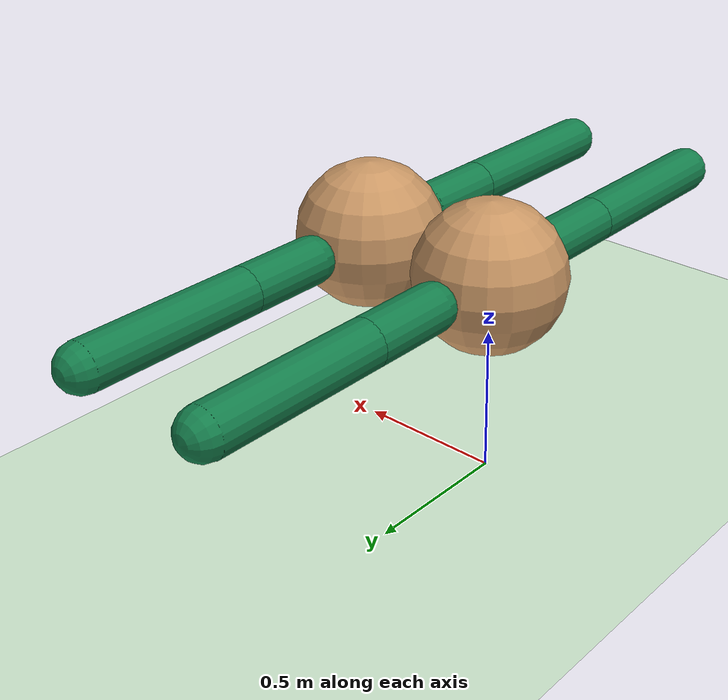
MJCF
<mujoco model="centipede-top-g">
  <compiler angle="radian" coordinate="local" inertiafromgeom="true" settotalmass="14"/>
  <default>
    <joint armature=".1" damping=".01" limited="true" solimplimit="0 .8 .03" solreflimit=".02 1" stiffness="8"/>
    <geom conaffinity="0" condim="3" contype="1" friction=".4 .1 .1" rgba="0.8 0.6 .4 1" solimp="0.0 0.8 0.01" solref="0.02 1"/>
    <motor ctrllimited="true" ctrlrange="-1 1"/>
  </default>
  <size nstack="300000" nuser_geom="1"/>
  <option gravity="0 0 -9.81" timestep="0.01"/>
  <asset>
    <texture builtin="gradient" height="100" rgb1="1 1 1" rgb2="0 0 0" type="skybox" width="100"/>
    <texture builtin="flat" height="1278" mark="cross" markrgb="1 1 1" name="texgeom" random="0.01" rgb1="0.8 0.6 0.4" rgb2="0.8 0.6 0.4" type="cube" width="127"/>
    <texture builtin="checker" height="100" name="texplane" rgb1="0 0 0" rgb2="0.8 0.8 0.8" type="2d" width="100"/>
    <material name="MatPlane" reflectance="0.5" shininess="1" specular="1" texrepeat="60 60" texture="texplane"/>
    <material name="geom" texture="texgeom" texuniform="true"/>
  </asset>
  <worldbody>
    <light cutoff="100" diffuse="1 1 1" dir="-0 0 -1.3" directional="true" exponent="1" pos="0 0 1.3" specular=".1 .1 .1"/>
    <geom conaffinity="1" condim="3" material="MatPlane" name="floor" pos="0 0 0" rgba="0.8 0.9 0.8 1" size="40 40 40" type="plane"/>
    <body name="torso_0" pos="0 0 .7">
      <camera name="track" mode="trackcom" pos="0 -3 0.3" xyaxes="1 0 0 0 0 1"/>
      <joint armature="0" axis="1 0 0" damping="0" limited="false" name="root" pos="0 0 0" stiffness="0" type="free"/>
      <geom pos="0 0 0" name="torso_0" size="0.25" type="sphere" density="100"/>

      <body name="legbody_0" pos="0.0 -0.28 0">
        <joint axis="0 0 1" damping="4.5" name="lefthip_0" pos="0.0 0.0 0.0" range="-.698 .698" stiffness="180" type="hinge"/>
        <geom fromto="0.0 0.0 0.0 0.0 -0.28 0.0" name="legGeom_0" size="0.08" type="capsule" rgba=".08 .5 .3 1"/>
        <body pos="0 -0.28 0" name="frontFoot_0">
          <joint axis="1 0 0" damping="3" name="ankle_0" pos="0.0 0.0 0.0" range="0.524 1.75" stiffness="120" type="hinge"/>
          <geom fromto="0.0 0.0 0.0 0 -0.6 0.0" name="ankleGeom_0" size="0.08" type="capsule" rgba=".08 .5 .3 1"/>
        </body>
      </body>

      <body name="legbody_1" pos="0.0 0.28 0">
        <joint axis="0 0 1" damping="4.5" name="righthip_1" pos="0.0 0.0 0.0" range="-.698 .698" stiffness="180" type="hinge"/>
        <geom fromto="0.0 0.0 0.0 0.0 0.28 0.0" name="legGeom_1" size="0.08" type="capsule" rgba=".08 .5 .3 1"/>
        <body pos="0 0.28 0" name="frontFoot_1">
          <joint axis="-1 0 0" damping="3" name="ankle_1" pos="0.0 0.0 0.0" range="0.524 1.75" stiffness="120" type="hinge"/>
          <geom fromto="0.0 0.0 0.0 0 0.6 0.0" name="ankleGeom_1" size="0.08" type="capsule" rgba=".08 .5 .3 1"/>
        </body>
      </body>

      <body name="torso_1" pos="0.5 0 0">
        <geom name="torso_1" pos="0 0 0" size="0.25" type="sphere" density="100"/>
        <joint axis="0 0 1" name="body_1" pos="-0.25 0.0 0.0" range="-0.349 0.349" type="hinge"/>
        <joint axis="0 1 0" name="bodyupdown_1" pos="-0.25 0.0 0.0" range="-0.174 0.524" type="hinge"/>
        <body name="legbody_2" pos="0.0 -0.28 0">
        <joint axis="0 0 1" damping="4.5" name="lefthip_2" pos="0.0 0.0 0.0" range="-.698 .698" stiffness="180" type="hinge"/>
        <geom fromto="0.0 0.0 0.0 0.0 -0.28 0.0" name="legGeom_2" size="0.08" type="capsule" rgba=".08 .5 .3 1"/>
        <body pos="0 -0.28 0" name="frontFoot_2">
          <joint axis="1 0 0" damping="3" name="ankle_2" pos="0.0 0.0 0.0" range="0.524 1.75" stiffness="120" type="hinge"/>
          <geom fromto="0.0 0.0 0.0 0 -0.6 0.0" name="ankleGeom_2" size="0.08" type="capsule" rgba=".08 .5 .3 1"/>
        </body>
      </body>

        <body name="legbody_3" pos="0.0 0.28 0">
        <joint axis="0 0 1" damping="4.5" name="righthip_3" pos="0.0 0.0 0.0" range="-.698 .698" stiffness="180" type="hinge"/>
        <geom fromto="0.0 0.0 0.0 0.0 0.28 0.0" name="legGeom_3" size="0.08" type="capsule" rgba=".08 .5 .3 1"/>
        <body pos="0 0.28 0" name="frontFoot_3">
          <joint axis="-1 0 0" damping="3" name="ankle_3" pos="0.0 0.0 0.0" range="0.524 1.75" stiffness="120" type="hinge"/>
          <geom fromto="0.0 0.0 0.0 0 0.6 0.0" name="ankleGeom_3" size="0.08" type="capsule" rgba=".08 .5 .3 1"/>
        </body>
      </body>
      </body>

    </body>
  </worldbody>
  <actuator>
    <motor ctrllimited="true" ctrlrange="-1.0 1.0" joint="body_1" gear="100"/>
    <motor ctrllimited="true" ctrlrange="-1.0 1.0" joint="bodyupdown_1" gear="100"/>
    <motor ctrllimited="true" ctrlrange="-1.0 1.0" joint="lefthip_0" gear="150"/>
    <motor ctrllimited="true" ctrlrange="-1.0 1.0" joint="ankle_0" gear="150"/>
    <motor ctrllimited="true" ctrlrange="-1.0 1.0" joint="righthip_1" gear="150"/>
    <motor ctrllimited="true" ctrlrange="-1.0 1.0" joint="ankle_1" gear="150"/>
    <motor ctrllimited="true" ctrlrange="-1.0 1.0" joint="lefthip_2" gear="150"/>
    <motor ctrllimited="true" ctrlrange="-1.0 1.0" joint="ankle_2" gear="150"/>
    <motor ctrllimited="true" ctrlrange="-1.0 1.0" joint="righthip_3" gear="150"/>
    <motor ctrllimited="true" ctrlrange="-1.0 1.0" joint="ankle_3" gear="150"/>
  </actuator>
</mujoco>
